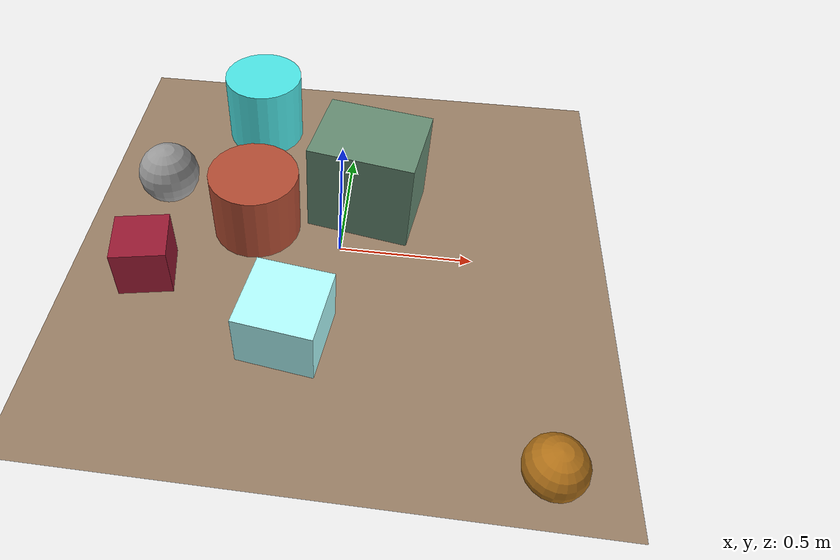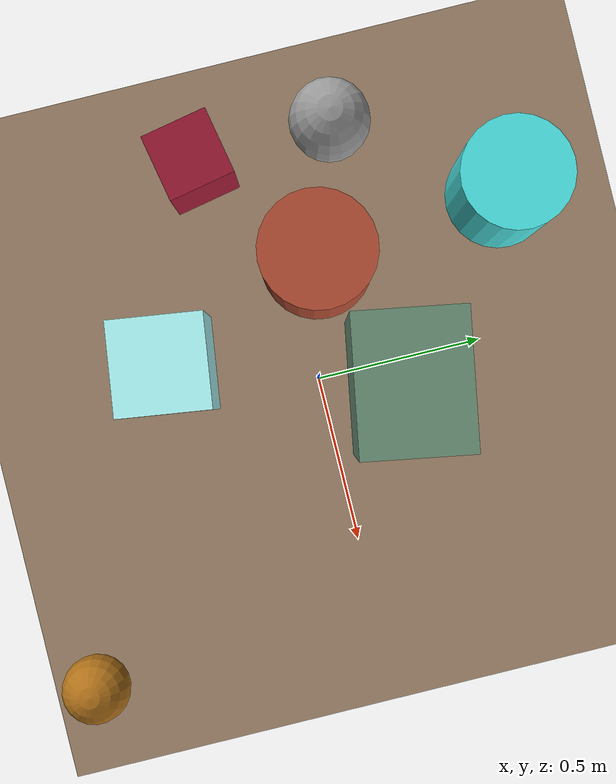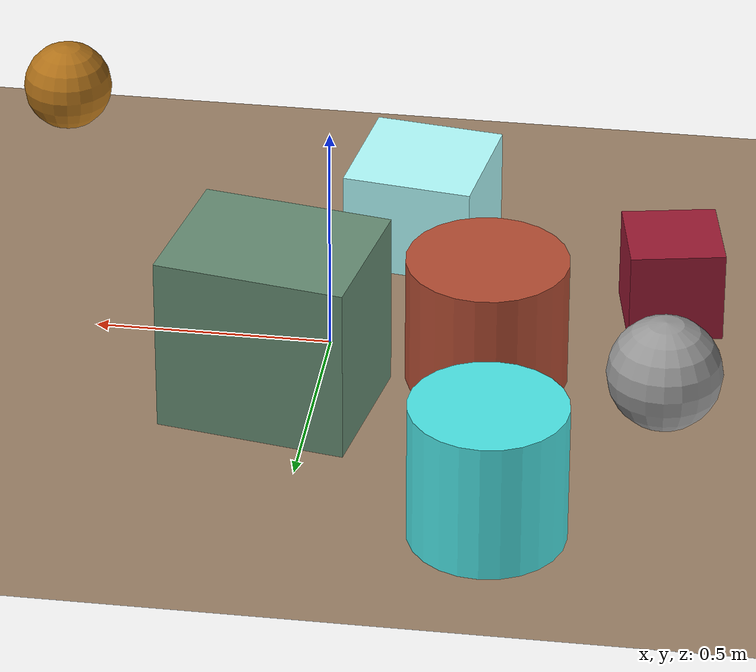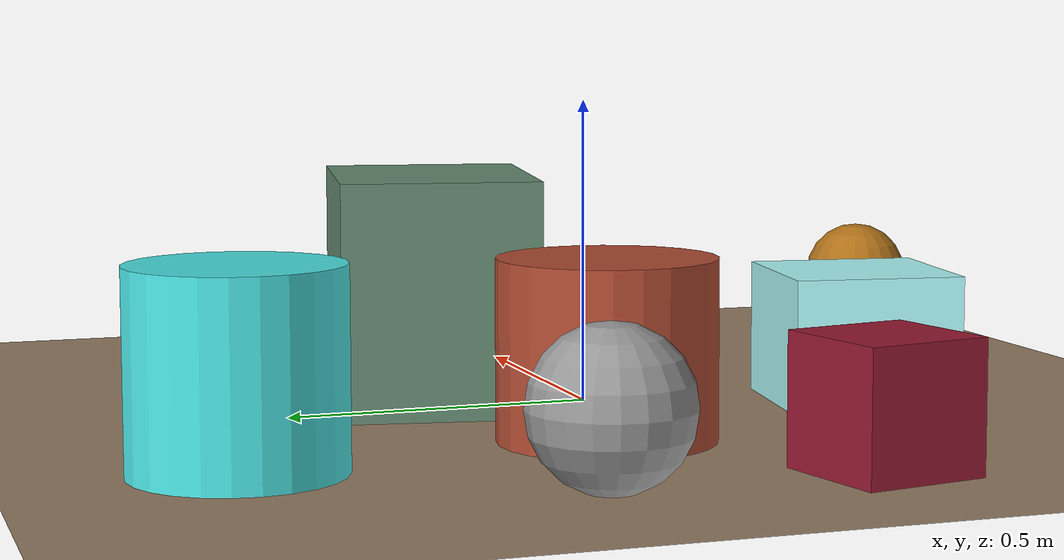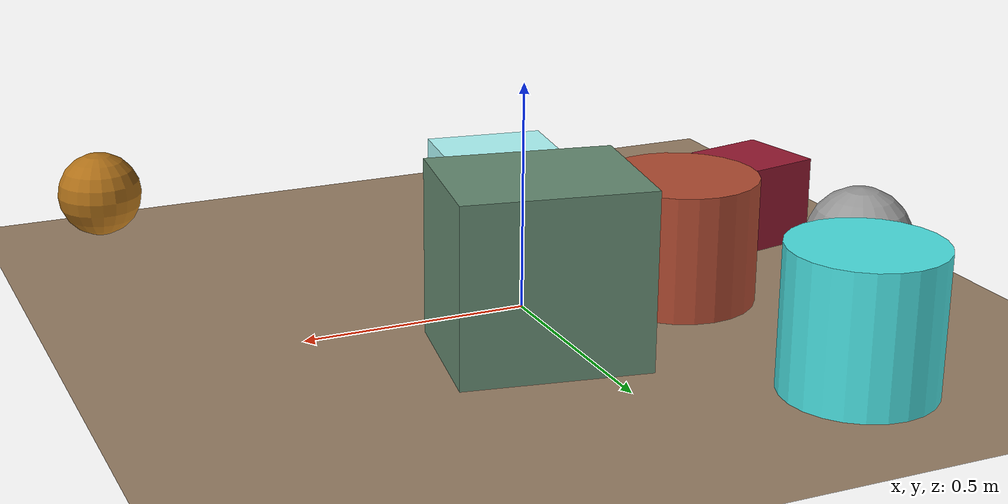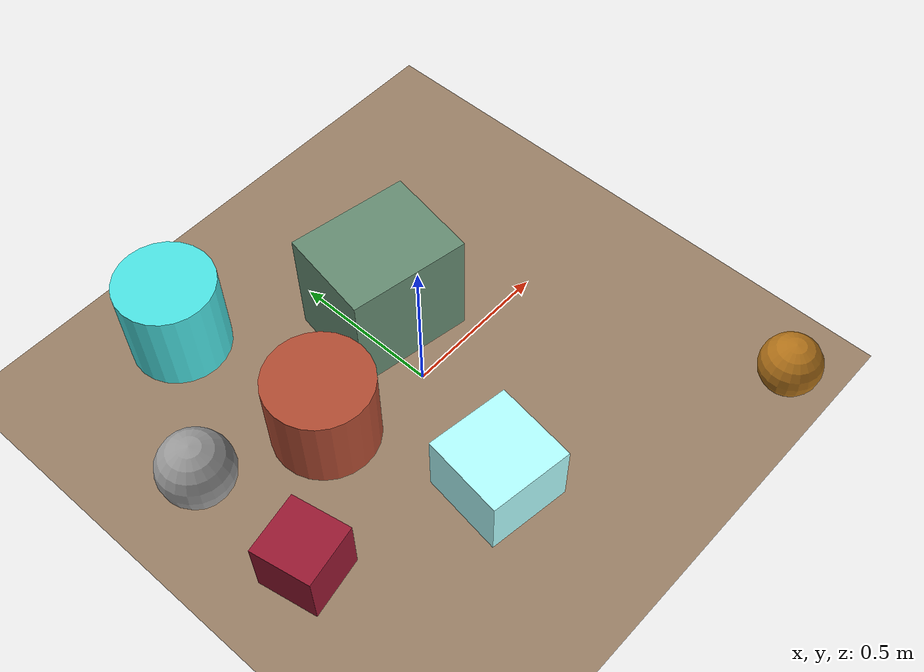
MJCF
<mujoco>
   <asset>
<texture type="skybox" builtin="gradient" rgb1="0.7 0.3 0.6" rgb2="0.1 0.9 0.5" width="256" height="256"/>
<texture name="flat_0" builtin="flat" rgb1="0.6 0.1 0.2" rgb2="0.6 0.1 0.2"  width="200" height="200"/>
<texture name="flat_1" builtin="flat" rgb1="0.3 0.9 0.9" rgb2="0.3 0.9 0.9"  width="200" height="200"/>
<texture name="flat_2" builtin="flat" rgb1="0.7 1.0 1.0" rgb2="0.7 1.0 1.0"  width="200" height="200"/>
<texture name="checker_3" builtin="checker" rgb1="0.4 0.9 0.1" rgb2="0.4 0.2 0.8" width="200" height="200"/>
<texture name="checker_4" builtin="checker" rgb1="0.9 0.6 0.4" rgb2="0.3 0.6 0.8" width="200" height="200"/>
<texture name="gradient_5" builtin="gradient" rgb1="0.9 0.9 0.1" rgb2="0.5 0.0 0.1" width="200" height="200"/>
<texture name="flat_6" builtin="flat" rgb1="0.7 0.3 0.2" rgb2="0.7 0.3 0.2"  width="200" height="200"/><material name="flat_0_mat" reflectance="0" texture="flat_0" texuniform="true"/>
<material name="flat_1_mat" reflectance="0" texture="flat_1" texuniform="true"/>
<material name="flat_2_mat" reflectance="0" texture="flat_2" texuniform="true"/>
<material name="checker_3_mat" reflectance="0" texrepeat="9 9" texture="checker_3" texuniform="false" />
<material name="checker_4_mat" reflectance="0" texrepeat="3 3" texture="checker_4" texuniform="false" />
<material name="gradient_5_mat" reflectance="0" texture="gradient_5" texuniform="true"/>
<material name="flat_6_mat" reflectance="0" texture="flat_6" texuniform="true"/>
   </asset>

   <worldbody>
      <light diffuse=".9 .9 .9" pos="0 0 3" dir="0 0 -1"/>
     <geom type="plane" size="1 1 0.1" rgba="0.6 0.5 0.4 1"/>
<geom type="box" pos="-0.7 -0.21 0.1" size="0.1 0.1 0.1" material="flat_0_mat" euler="0 0 11" />
<geom type="cylinder" pos="-0.41 0.66 0.15" size="0.16 0.15 0.15" material="flat_1_mat" euler="0 0 1" />
<geom type="box" pos="-0.14 -0.43 0.11" size="0.14 0.14 0.11" material="flat_2_mat" euler="0 0 82" />
<geom type="box" pos="0.08 0.24 0.19" size="0.16 0.2 0.19" material="checker_3_mat" euler="0 0 80" />
<geom type="sphere" pos="-0.72 0.21 0.12" size="0.12 0.12 0.12" material="checker_4_mat" euler="0 0 4" />
<geom type="sphere" pos="0.73 -0.85 0.1" size="0.1 0.1 0.1" material="gradient_5_mat" euler="0 0 10" />
<geom type="cylinder" pos="-0.34 0.08 0.14" size="0.17 0.14 0.14" material="flat_6_mat" euler="0 0 73" /><camera euler="60 0 180" fovy="60" name="camera1" pos="-0.2 -1.5 1"></camera>   </worldbody>
</mujoco>
